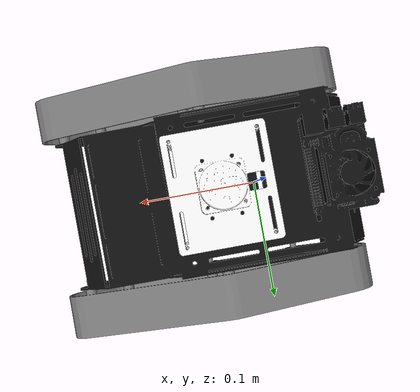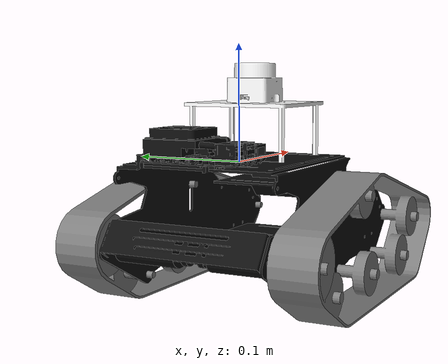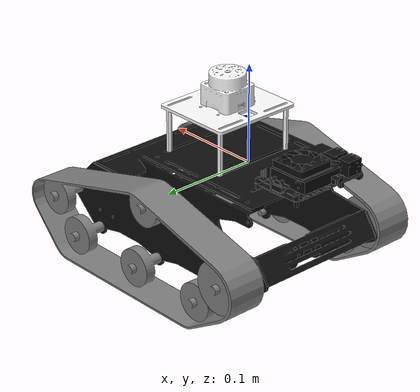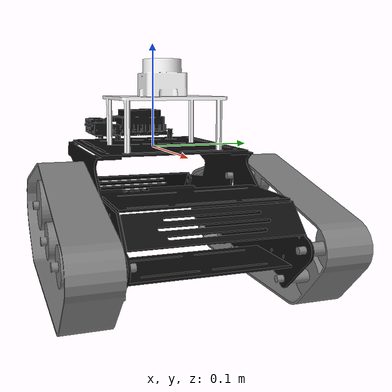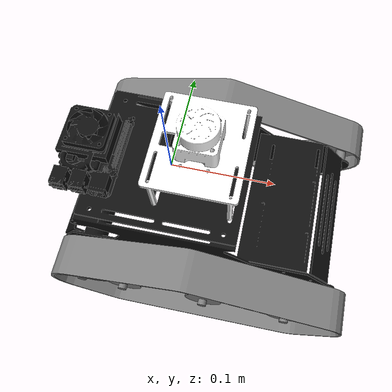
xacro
<?xml version="1.0"?>
<robot xmlns:xacro="http://www.ros.org/wiki/xacro" name="robot">

    <xacro:arg name="use_ros2_control" default="true" />
    <xacro:arg name="use_ros2_control_gz_sim" default="false" />

    <!-- Robot_frames -->
    <xacro:include filename="robot_core.xacro" />

    <!-- Controls -->
    <xacro:if value="$(arg use_ros2_control)">
        <xacro:include filename="ros2_control.xacro" />
    </xacro:if>
    <xacro:unless value="$(arg use_ros2_control)">
        <xacro:include filename="gz_diff_drive_control.xacro" />
    </xacro:unless>

    <!-- Sensors -->
    <xacro:include filename="lidar.xacro" />

</robot>

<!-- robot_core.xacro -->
<robot xmlns:xacro="http://www.ros.org/wiki/xacro">

    <xacro:property name="chassis_length" value="0.335" />
    <xacro:property name="chassis_width" value="0.265" />
    <xacro:property name="chassis_height" value="0.138" />
    <xacro:property name="chassis_mass" value="1.0" />
    <xacro:property name="wheel_radius" value="0.033" />
    <xacro:property name="wheel_thickness" value="0.026" />
    <xacro:property name="wheel_mass" value="0.05" />
    <xacro:property name="wheel_offset_x" value="0.226" />
    <xacro:property name="wheel_offset_y" value="0.1485" />
    <xacro:property name="wheel_offset_z" value="0.01" />
    <xacro:property name="caster_wheel_radius" value="0.01" />
    <xacro:property name="caster_wheel_mass" value="0.01" />
    <xacro:property name="caster_wheel_offset_x" value="0.075" />
    <xacro:property name="caster_wheel_offset_z"
        value="${wheel_offset_z - wheel_radius + caster_wheel_radius}" />

    <material name="white">
        <color rgba="1 1 1 1" />
    </material>

    <material name="orange">
        <color rgba="1 0.3 0.1 1" />
    </material>

    <material name="blue">
        <color rgba="0.2 0.2 1 1" />
    </material>

    <material name="black">
        <color rgba="0 0 0 1" />
    </material>

    <material name="red">
        <color rgba="1 0 0 1" />
    </material>

    <!-- BASE LINK -->

    <link name="base_link">

    </link>

    <!-- BASE_FOOTPRINT LINK -->

    <joint name="base_footprint_joint" type="fixed">
        <parent link="base_link" />
        <child link="base_footprint" />
        <origin xyz="0 0 -0.11948" rpy="0 0 0" />
        <axis xyz="0.0039682 -0.99999 0" />
    </joint>

    <link name="base_footprint">
        <inertial>
            <origin
                xyz="0.055623 -1.1796E-16 0.046481"
                rpy="0 0 0" />
            <mass
                value="0.33106" />
            <inertia
                ixx="0.00024841"
                ixy="1.9554E-18"
                ixz="2.9769E-05"
                iyy="0.0012783"
                iyz="2.1955E-19"
                izz="0.001084" />
        </inertial>
        <visual>
            <origin xyz="0 0 0" rpy="0 0 0" />
            <geometry>
                <mesh filename="package://halfonso_v2/meshes/base_footprint.stl" />
            </geometry>
            <material
                name="">
                <color rgba="0.49804 0.49804 0.49804 1" />
            </material>
        </visual>

        <collision>
            <origin xyz="0 0 0" rpy="0 0 0" />
            <geometry>
                <mesh filename="package://halfonso_v2/meshes/base_footprint.stl" />
            </geometry>
        </collision>
    </link>

    <!-- CHASSIS LINK -->

    <joint name="chassis_joint" type="fixed">
        <parent link="base_link" />
        <child link="chassis" />
        <origin xyz="0 0 0" />
    </joint>

    <link name="chassis">
        <inertial>
            <origin
                xyz="0.00062538 0.011608 -0.03299"
                rpy="0 0 0" />
            <mass
                value="0.42011" />
            <inertia
                ixx="0.00041367"
                ixy="5.996E-07"
                ixz="5.5589E-05"
                iyy="0.0010659"
                iyz="1.7009E-06"
                izz="0.0012337" />
        </inertial>
        <visual>
            <origin xyz="0 0 0" rpy="0 0 0" />
            <geometry>
                <mesh filename="package://halfonso_v2/meshes/base_link.stl" />
            </geometry>
            <material
                name="">
                <color
                    rgba="0.058824 0.058824 0.058824 1" />
            </material>
        </visual>

        <collision>
            <origin xyz="0 0 0" rpy="0 0 0" />
            <geometry>
                <mesh filename="package://halfonso_v2/meshes/base_link.stl" />
            </geometry>
        </collision>
    </link>

    <gazebo reference="chassis">
        <material>Gazebo/Orange</material>
    </gazebo>

    <!-- LEFT WHEEL LINK -->

    <joint name="left_wheel_joint" type="continuous">
        <parent link="base_link" />
        <child link="left_wheel" />
        <origin xyz="-0.071606 0.10612 -0.067079" rpy="1.5708 0 -0.0039682" />
        <axis xyz="0 0 -1" />
    </joint>

    <link name="left_wheel">
        <inertial>
            <origin
                xyz="6.2486E-11 -1.6653E-16 0.011068"
                rpy="0 0 0" />
            <mass
                value="0.049265" />
            <inertia
                ixx="1.07E-05"
                ixy="-6.8378E-22"
                ixz="9.1982E-22"
                iyy="1.07E-05"
                iyz="1.2891E-19"
                izz="1.6785E-05" />
        </inertial>
        <visual>
            <origin xyz="0 0 0" rpy="0 0 0" />
            <geometry>
                <mesh filename="package://halfonso_v2/meshes/left_wheel.stl" />
            </geometry>
            <material name="">
                <color rgba="0.49804 0.49804 0.49804 1" />
            </material>
        </visual>
        <collision>
            <origin xyz="0 0 0" rpy="0 0 0" />
            <geometry>
                <mesh filename="package://halfonso_v2/meshes/left_wheel.stl" />
            </geometry>
        </collision>
    </link>

    <gazebo reference="left_wheel">
        <material>Gazebo/Blue</material>
    </gazebo>

    <!-- RIGHT WHEEL LINK -->

    <joint name="right_wheel_joint" type="continuous">
        <parent link="base_link" />
        <child link="right_wheel" />
        <origin xyz="-0.071606 -0.10612 -0.067079" rpy="-1.5708 0 0.0039682" />
        <axis xyz="0.0079364 0 0.99997" />
    </joint>

    <link name="right_wheel">
        <inertial>
            <origin
                xyz="-2.7756E-17 1.7347E-16 0.011068"
                rpy="0 0 0" />
            <mass
                value="0.049265" />
            <inertia
                ixx="1.07E-05"
                ixy="-6.5289E-22"
                ixz="-1.2672E-21"
                iyy="1.07E-05"
                iyz="-1.2917E-19"
                izz="1.6785E-05" />
        </inertial>
        <visual>
            <origin xyz="0 0 0" rpy="0 0 0" />
            <geometry>
                <mesh filename="package://halfonso_v2/meshes/right_wheel.stl" />
            </geometry>
            <material name="">
                <color rgba="0.49804 0.49804 0.49804 1" />
            </material>
        </visual>
        <collision>
            <origin xyz="0 0 0" rpy="0 0 0" />
            <geometry>
                <mesh filename="package://halfonso_v2/meshes/right_wheel.stl" />
            </geometry>
        </collision>
    </link>

    <gazebo reference="right_wheel">
        <material>Gazebo/Blue</material>
    </gazebo>

    <!-- CASTER WHEEL LINK -->

</robot>

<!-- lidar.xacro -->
<robot xmlns:xacro="http://www.ros.org/wiki/xacro" name="robot">

    <xacro:property name="lidar_radius" value="0.025" />
    <xacro:property name="lidar_thickness" value="0.040" />
    <xacro:property name="lidar_offset_x" value="0.230" />
    <xacro:property name="lidar_offset_z" value="0.098" />

    <!-- Lidar -->
    <joint name="laser_joint" type="fixed">
        <origin xyz="0.029644 0 0.071347" rpy="0 0 0" />
        <parent link="base_link" />
        <child link="laser_frame" />
        <axis xyz="0 0 1" />
    </joint>

    <link name="laser_frame">
        <inertial>
            <origin
                xyz="0 0 0"
                rpy="0 0 0" />
            <mass
                value="0" />
            <inertia
                ixx="0"
                ixy="0"
                ixz="0"
                iyy="0"
                iyz="0"
                izz="0" />
        </inertial>
        <visual>
            <origin xyz="0 0 0" rpy="0 0 0" />
            <geometry>
                <mesh filename="package://halfonso_v2/meshes/laser_frame.stl" />
            </geometry>
            <material name="">
                <color
                    rgba="1 1 1 1" />
            </material>
        </visual>
        <collision>
            <origin xyz="0 0 0" rpy="0 0 0" />
            <geometry>
                <mesh filename="package://halfonso_v2/meshes/laser_frame.stl" />
            </geometry>
        </collision>
    </link>

    <!-- Lidar in gazebo-->
    <gazebo reference="laser_frame">
        <sensor name="lidar" type="gpu_lidar">

            <gz_frame_id>laser_frame</gz_frame_id>
            <pose>0 0 0 0 0 0</pose>
            <topic>scan</topic>
            <update_rate>10</update_rate>
            <always_on>1</always_on>
            <visualize>true</visualize>

            <lidar>
                <scan>
                    <horizontal>
                        <samples>360</samples>
                        <resolution>1</resolution>
                        <min_angle>-3.14159</min_angle>
                        <max_angle>3.14159</max_angle>
                    </horizontal>
                    <vertical>
                        <samples>1</samples>
                        <resolution>0.1</resolution>
                        <min_angle>0.</min_angle>
                        <max_angle>0.</max_angle>
                    </vertical>
                </scan>
                <range>
                    <min>0.08</min>
                    <max>10.0</max>
                    <resolution>0.01</resolution>
                </range>
                <noise>
                    <type>gaussian</type>
                    <mean>0.0</mean>
                    <stddev>0.01</stddev>
                </noise>
            </lidar>

            <plugin filename="gz-sim-sensors-system"
                name="gz::sim::systems::Sensors">
                <render_engine>ogre2</render_engine>
            </plugin>

        </sensor>
    </gazebo>
</robot>
